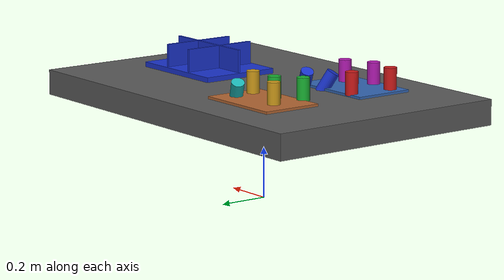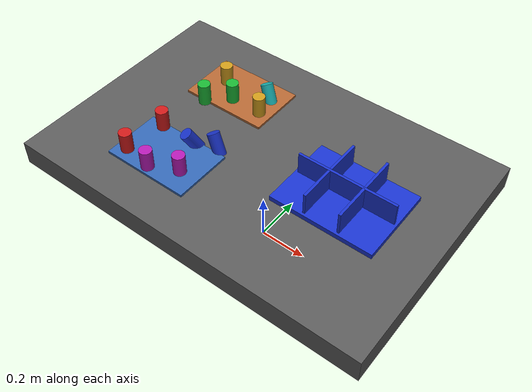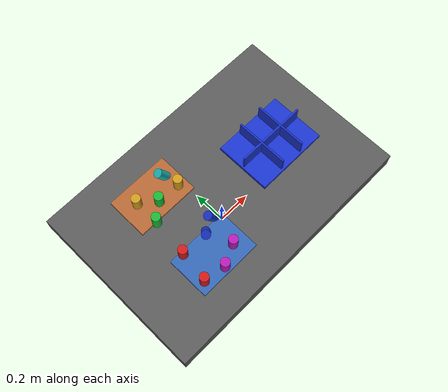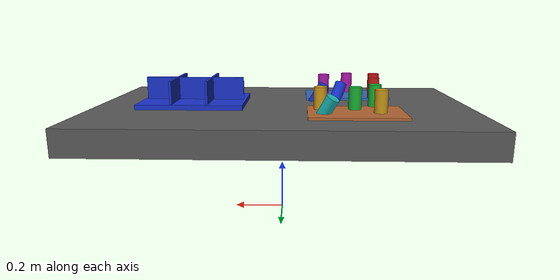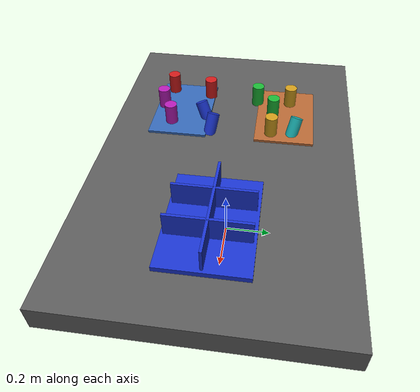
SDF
<?xml version="1.0" ?>
<sdf version="1.9">
  <!-- Standalone M1B scene.  The controller-backed Panda is spawned by the
       existing launch path; this file never alters the frozen M1A cube world. -->
  <world name="industrial_cylinder_v1">
    <physics name="bullet" type="bullet"><max_step_size>0.001</max_step_size><real_time_factor>1.0</real_time_factor></physics>
    <plugin name="gz::sim::systems::Physics" filename="gz-sim-physics-system"><engine><filename>gz-physics-bullet-featherstone-plugin</filename></engine></plugin>
    <plugin name="gz::sim::systems::UserCommands" filename="gz-sim-user-commands-system"/>
    <plugin name="gz::sim::systems::SceneBroadcaster" filename="gz-sim-scene-broadcaster-system"/>
    <plugin name="gz::sim::systems::Sensors" filename="gz-sim-sensors-system"><render_engine>ogre2</render_engine></plugin>
    <gravity>0 0 -9.81</gravity>
    <light type="directional" name="industrial_light"><pose>0 0 5 0 0 0</pose><direction>-0.3 0.2 -0.9</direction><diffuse>0.9 0.9 0.9 1</diffuse></light>
    <model name="industrial_work_table"><static>true</static><link name="link"><pose>0 0 0.4 0 0 0</pose><collision name="collision"><geometry><box><size>1.5 1.0 0.1</size></box></geometry></collision><visual name="visual"><geometry><box><size>1.5 1.0 0.1</size></box></geometry><material><diffuse>0.35 0.35 0.35 1</diffuse></material></visual></link></model>
    <model name="camera_fixture"><static>true</static><link name="camera_rgbd"><pose>-0.80 -0.80 1.40 0 0.77 0.93</pose><sensor name="front_rgbd" type="rgbd_camera"><always_on>1</always_on><update_rate>15</update_rate><topic>/xh/camera/rgbd</topic><camera><horizontal_fov>1.047</horizontal_fov><image><width>640</width><height>480</height><format>R8G8B8</format></image><clip><near>0.1</near><far>4.0</far></clip></camera></sensor></link></model>
    <model name="incoming_zone_a"><static>true</static><link name="link"><pose>-0.28 -0.22 0.455 0 0 0</pose><visual name="visual"><geometry><box><size>0.36 0.24 0.01</size></box></geometry><material><diffuse>0.2 0.4 0.7 1</diffuse></material></visual></link></model>
    <model name="incoming_zone_b"><static>true</static><link name="link"><pose>-0.28 0.22 0.455 0 0 0</pose><visual name="visual"><geometry><box><size>0.36 0.24 0.01</size></box></geometry><material><diffuse>0.7 0.4 0.2 1</diffuse></material></visual></link></model>
    <!-- M1B_RANDOM_PARTS_BEGIN -->
    <model name="cylinder_01"><pose>-0.3893 -0.1186 0.5000 0.0000 0.0000 -0.8206</pose><link name="link"><inertial><mass>0.06</mass></inertial><collision name="collision"><geometry><cylinder><radius>0.025</radius><length>0.09</length></cylinder></geometry></collision><visual name="visual"><geometry><cylinder><radius>0.025</radius><length>0.09</length></cylinder></geometry><material><diffuse>0.800 0.100 0.100 1</diffuse><specular>0.15 0.15 0.15 1</specular></material></visual></link></model>
    <model name="cylinder_02"><pose>-0.3647 0.0948 0.5000 3.1416 0.0000 2.7675</pose><link name="link"><inertial><mass>0.06</mass></inertial><collision name="collision"><geometry><cylinder><radius>0.025</radius><length>0.09</length></cylinder></geometry></collision><visual name="visual"><geometry><cylinder><radius>0.025</radius><length>0.09</length></cylinder></geometry><material><diffuse>0.100 0.700 0.200 1</diffuse><specular>0.15 0.15 0.15 1</specular></material></visual></link></model>
    <model name="cylinder_03"><pose>-0.2365 -0.1223 0.4800 0.4500 -0.3000 -0.1820</pose><link name="link"><inertial><mass>0.06</mass></inertial><collision name="collision"><geometry><cylinder><radius>0.025</radius><length>0.09</length></cylinder></geometry></collision><visual name="visual"><geometry><cylinder><radius>0.025</radius><length>0.09</length></cylinder></geometry><material><diffuse>0.100 0.200 0.800 1</diffuse><specular>0.15 0.15 0.15 1</specular></material></visual></link></model>
    <model name="cylinder_04"><pose>-0.3683 0.2361 0.5000 0.0000 0.0000 -2.3391</pose><link name="link"><inertial><mass>0.06</mass></inertial><collision name="collision"><geometry><cylinder><radius>0.025</radius><length>0.09</length></cylinder></geometry></collision><visual name="visual"><geometry><cylinder><radius>0.025</radius><length>0.09</length></cylinder></geometry><material><diffuse>0.800 0.600 0.100 1</diffuse><specular>0.15 0.15 0.15 1</specular></material></visual></link></model>
    <model name="cylinder_05"><pose>-0.1801 -0.2559 0.5000 3.1416 0.0000 -1.3425</pose><link name="link"><inertial><mass>0.06</mass></inertial><collision name="collision"><geometry><cylinder><radius>0.025</radius><length>0.09</length></cylinder></geometry></collision><visual name="visual"><geometry><cylinder><radius>0.025</radius><length>0.09</length></cylinder></geometry><material><diffuse>0.700 0.100 0.700 1</diffuse><specular>0.15 0.15 0.15 1</specular></material></visual></link></model>
    <model name="cylinder_06"><pose>-0.1706 0.2581 0.4800 0.4500 -0.3000 -1.4829</pose><link name="link"><inertial><mass>0.06</mass></inertial><collision name="collision"><geometry><cylinder><radius>0.025</radius><length>0.09</length></cylinder></geometry></collision><visual name="visual"><geometry><cylinder><radius>0.025</radius><length>0.09</length></cylinder></geometry><material><diffuse>0.100 0.700 0.700 1</diffuse><specular>0.15 0.15 0.15 1</specular></material></visual></link></model>
    <model name="cylinder_07"><pose>-0.4116 -0.2889 0.5000 0.0000 0.0000 1.9318</pose><link name="link"><inertial><mass>0.06</mass></inertial><collision name="collision"><geometry><cylinder><radius>0.025</radius><length>0.09</length></cylinder></geometry></collision><visual name="visual"><geometry><cylinder><radius>0.025</radius><length>0.09</length></cylinder></geometry><material><diffuse>0.800 0.100 0.100 1</diffuse><specular>0.15 0.15 0.15 1</specular></material></visual></link></model>
    <model name="cylinder_08"><pose>-0.2809 0.1660 0.5000 3.1416 0.0000 2.1057</pose><link name="link"><inertial><mass>0.06</mass></inertial><collision name="collision"><geometry><cylinder><radius>0.025</radius><length>0.09</length></cylinder></geometry></collision><visual name="visual"><geometry><cylinder><radius>0.025</radius><length>0.09</length></cylinder></geometry><material><diffuse>0.100 0.700 0.200 1</diffuse><specular>0.15 0.15 0.15 1</specular></material></visual></link></model>
    <model name="cylinder_09"><pose>-0.1538 -0.0817 0.4800 0.4500 -0.3000 -1.3435</pose><link name="link"><inertial><mass>0.06</mass></inertial><collision name="collision"><geometry><cylinder><radius>0.025</radius><length>0.09</length></cylinder></geometry></collision><visual name="visual"><geometry><cylinder><radius>0.025</radius><length>0.09</length></cylinder></geometry><material><diffuse>0.100 0.200 0.800 1</diffuse><specular>0.15 0.15 0.15 1</specular></material></visual></link></model>
    <model name="cylinder_10"><pose>-0.1494 0.1655 0.5000 0.0000 0.0000 0.7252</pose><link name="link"><inertial><mass>0.06</mass></inertial><collision name="collision"><geometry><cylinder><radius>0.025</radius><length>0.09</length></cylinder></geometry></collision><visual name="visual"><geometry><cylinder><radius>0.025</radius><length>0.09</length></cylinder></geometry><material><diffuse>0.800 0.600 0.100 1</diffuse><specular>0.15 0.15 0.15 1</specular></material></visual></link></model>
    <model name="cylinder_11"><pose>-0.2897 -0.3088 0.5000 3.1416 0.0000 -0.3681</pose><link name="link"><inertial><mass>0.06</mass></inertial><collision name="collision"><geometry><cylinder><radius>0.025</radius><length>0.09</length></cylinder></geometry></collision><visual name="visual"><geometry><cylinder><radius>0.025</radius><length>0.09</length></cylinder></geometry><material><diffuse>0.700 0.100 0.700 1</diffuse><specular>0.15 0.15 0.15 1</specular></material></visual></link></model>
    <!-- M1B_RANDOM_PARTS_END -->
    <model name="blue_partition_bin"><static>true</static><pose>0.36 0 0.45 0 0 0</pose><link name="link"><collision name="floor"><pose>0 0 0.01 0 0 0</pose><geometry><box><size>0.42 0.32 0.02</size></box></geometry></collision><visual name="floor_visual"><pose>0 0 0.01 0 0 0</pose><geometry><box><size>0.42 0.32 0.02</size></box></geometry><material><diffuse>0.1 0.2 0.8 1</diffuse></material></visual><visual name="row_divider"><pose>0 0 0.06 0 0 0</pose><geometry><box><size>0.40 0.01 0.10</size></box></geometry><material><diffuse>0.1 0.2 0.8 1</diffuse></material></visual><visual name="col_divider_a"><pose>-0.07 0 0.06 0 0 0</pose><geometry><box><size>0.01 0.30 0.10</size></box></geometry><material><diffuse>0.1 0.2 0.8 1</diffuse></material></visual><visual name="col_divider_b"><pose>0.07 0 0.06 0 0 0</pose><geometry><box><size>0.01 0.30 0.10</size></box></geometry><material><diffuse>0.1 0.2 0.8 1</diffuse></material></visual></link></model>
    <!-- Reserved only: second table, bin transport corridor, stackable-bin
         collision volume, and second arm mounting namespace. -->
  </world>
</sdf>
